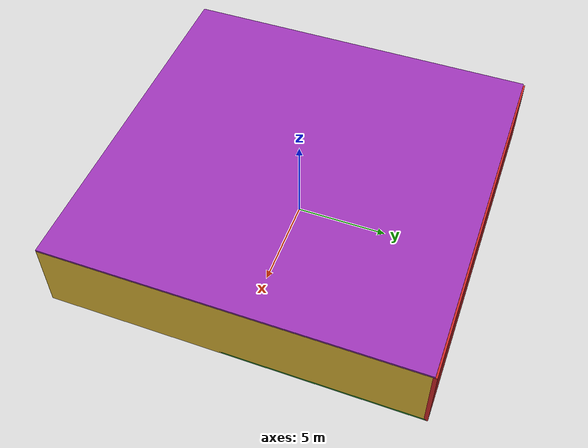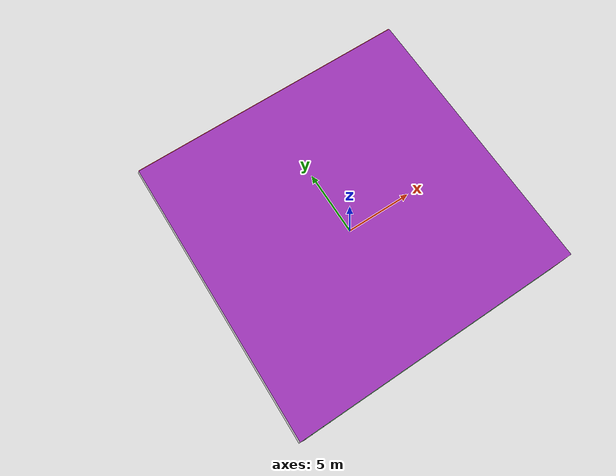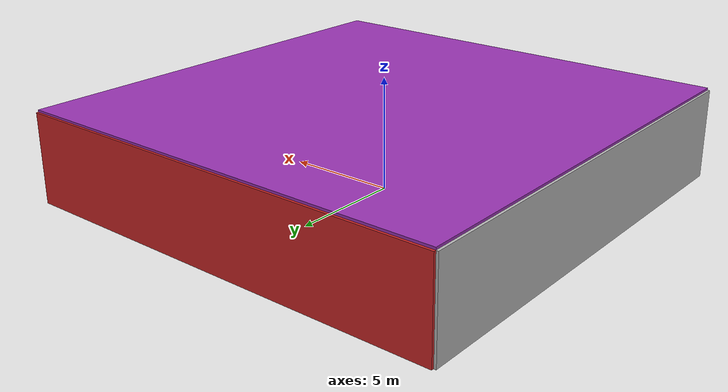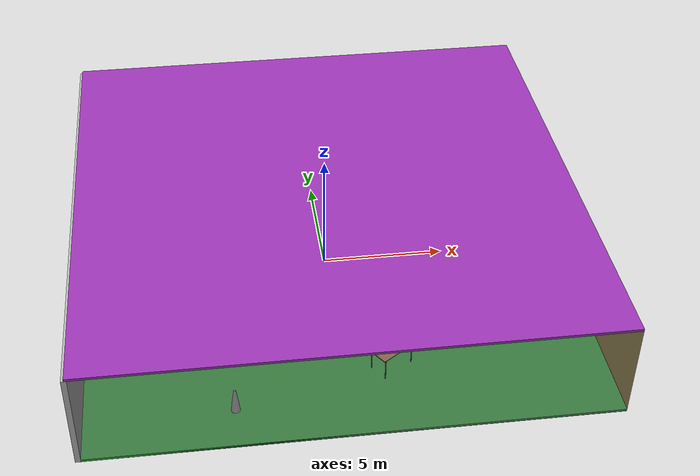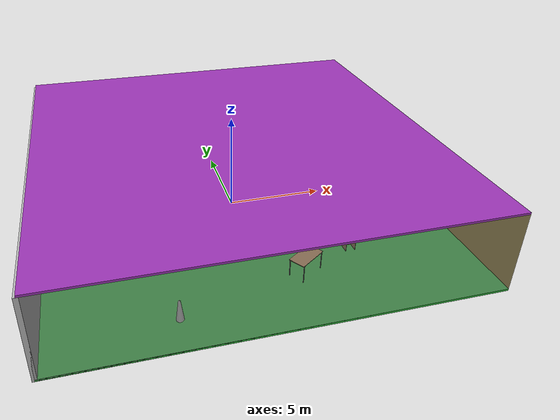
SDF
<sdf version="1.4">
 <world name="default">
  <physics type="ode">
   <max_step_size>0.001</max_step_size>
   <real_time_factor>1</real_time_factor>
   <real_time_update_rate>1000</real_time_update_rate>
   <gravity>0 0 -9.8</gravity>
  </physics>
  <scene><ambient>0.4 0.4 0.4 1</ambient><background>0.7 0.7 0.7 1</background><shadows>1</shadows></scene>
  <model name="Surrounding">
   <static>1</static>
   <link name="Ceiling">
    <collision name="Ceiling_Collision"><geometry><box><size>20 20 0.1</size></box></geometry></collision>
    <visual name="Ceiling_Visual">
     <geometry><box><size>20 20 0.1</size></box></geometry>
     <material>
      <script><uri>file://media/materials/scripts/gazebo.material</uri><name>Gazebo/Purple</name></script>
     </material>
    </visual>
    <pose>0 0 4.05 0 0 0</pose>
   </link>
   <link name="Wall_South">
    <collision name="Wall_South_Collision">
     <geometry><box><size>20 0 4</size></box></geometry>
     <pose>0 0 2 0 -0 0</pose>
    </collision>
    <visual name="Wall_South_Visual">
     <pose>0 0 2 0 -0 0</pose>
     <geometry><box><size>20 0 4</size></box></geometry>
     <material>
      <script><uri>file://media/materials/scripts/gazebo.material</uri><name>Gazebo/GreyTransparent</name></script>
     </material>
    </visual>
    <velocity_decay><linear>0</linear><angular>0</angular></velocity_decay>
    <pose>0 -10 0 0 -0 0</pose>
   </link>
   <link name="Wall_East">
    <collision name="Wall_21_Collision">
     <geometry><box><size>20 0 4</size></box></geometry>
     <pose>0 0 2 0 -0 0</pose>
    </collision>
    <visual name="Wall_21_Visual">
     <pose>0 0 2 0 -0 0</pose>
     <geometry><box><size>20 0 4</size></box></geometry>
     <material>
      <script><uri>file://media/materials/scripts/gazebo.material</uri><name>Gazebo/Gold</name></script>
     </material>
    </visual>
    <velocity_decay><linear>0</linear><angular>0</angular></velocity_decay>
    <pose>10 0 0 0 -0 1.5708</pose>
   </link>
   <link name="Wall_North">
    <collision name="Wall_22_Collision">
     <geometry><box><size>20 0.2 4</size></box></geometry>
     <pose>0 0 2 0 -0 0</pose>
    </collision>
    <visual name="Wall_22_Visual">
     <pose>0 0 2 0 -0 0</pose>
     <geometry><box><size>20 0.2 4</size></box></geometry>
     <material>
      <script><uri>file://media/materials/scripts/gazebo.material</uri><name>Gazebo/RedBright</name></script>
     </material>
    </visual>
    <velocity_decay><linear>0</linear><angular>0</angular></velocity_decay>
    <pose>0 10 0 0 -0 0</pose>
   </link>
   <link name="Wall_West">
    <collision name="Wall_23_Collision">
     <geometry><box><size>20 0.2 4</size></box></geometry>
     <pose>0 0 2 0 -0 0</pose>
    </collision>
    <visual name="Wall_23_Visual">
     <pose>0 0 2 0 -0 0</pose>
     <geometry><box><size>20 0.2 4</size></box></geometry>
     <material>
      <script><uri>file://media/materials/scripts/gazebo.material</uri><name>Gazebo/CloudySky</name></script>
     </material>
    </visual>
    <velocity_decay><linear>0</linear><angular>0</angular></velocity_decay>
    <pose>-10 0 0 0 0 -1.5708</pose>
   </link>
   <link name="Ground_link">
    <collision name="collision">
     <pose>0 0 .05 0 -0 0</pose>
     <geometry><box><size>20 20 0.1</size></box></geometry>
    </collision>
    <visual name="visual">
     <pose>0 0 .05 0 -0 0</pose>
     <geometry><box><size>20 20 0.1</size></box></geometry>
     <material>
      <script><uri>file://media/materials/scripts/gazebo.material</uri><name>Gazebo/Green</name></script>
     </material>
    </visual>
   </link>
   <static>1</static>
  </model>
  <spherical_coordinates>
   <surface_model>EARTH_WGS84</surface_model>
   <latitude_deg>0</latitude_deg>
   <longitude_deg>0</longitude_deg>
   <elevation>0</elevation>
   <heading_deg>0</heading_deg>
  </spherical_coordinates>
  <light name="lightball_0" type="diffuse">
   <diffuse>0.8 0.8 0.8 1</diffuse>
   <specular>0.2 0.2 0.2 1</specular>
   <attenuation>
    <range>100</range>
    <constant>0.7</constant>
    <linear>0.01</linear>
    <quadratic>0.001</quadratic>
   </attenuation>
   <direction>-0.5 0.1 -0.9</direction>
   <pose>6.91391337421 1.9397386067 1.12488992181 0 0 0</pose>
  </light>
  <light name="lightball_1" type="diffuse">
   <diffuse>0.8 0.8 0.8 1</diffuse>
   <specular>0.2 0.2 0.2 1</specular>
   <attenuation>
    <range>100</range>
    <constant>0.7</constant>
    <linear>0.01</linear>
    <quadratic>0.001</quadratic>
   </attenuation>
   <direction>-0.5 0.1 -0.9</direction>
   <pose>-5.84541247762 -9.19596233249 2.07328607631 0 0 0</pose>
  </light>
  <light name="lightball_2" type="diffuse">
   <diffuse>0.8 0.8 0.8 1</diffuse>
   <specular>0.2 0.2 0.2 1</specular>
   <attenuation>
    <range>100</range>
    <constant>0.7</constant>
    <linear>0.01</linear>
    <quadratic>0.001</quadratic>
   </attenuation>
   <direction>-0.5 0.1 -0.9</direction>
   <pose>9.56843630041 -9.8656228604 2.65243834835 0 0 0</pose>
  </light>
  <include>
   <uri>model://construction_cone</uri>
   <pose>-7.04602468943 8.5009863677 0 0 0 2.32283035949</pose>
  </include>
  <include>
   <uri>model://construction_cone</uri>
   <pose>-4.309839875 -8.26906326877 0 0 0 1.56051943425</pose>
  </include>
  <include><uri>model://cabinet</uri><pose>-4.86173701633 -4.53871390299 0 0 0 2.32190610909</pose></include>
  <include><uri>model://table</uri><pose>1.7592755431 -6.64352513174 0 0 0 0.599681172764</pose></include>
  <include><uri>model://cabinet</uri><pose>2.26982145807 1.46886898444 0 0 0 1.29419224212</pose></include>
  <include>
   <uri>model://textured_shapes</uri>
   <pose>0.809553819113 6.36154779958 0 0 0 1.18107365504</pose>
  </include>
  <include><uri>model://cabinet</uri><pose>4.43357665097 -5.47966804569 0 0 0 1.58182650395</pose></include>
 </world>
</sdf>

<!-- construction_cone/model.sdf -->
<sdf version="1.5">
  <model name="Construction Cone">
    <link name="link">
      <collision name="collision">
        <geometry>
          <mesh>
            <scale>10 10 10</scale>
            <uri>file://isr-testbed/construction_cone/meshes/construction_cone.dae</uri>
          </mesh>
        </geometry>
      </collision>
      <visual name="visual">
        <geometry>
          <mesh>
            <scale>10 10 10</scale>
            <uri>file://isr-testbed/construction_cone/meshes/construction_cone.dae</uri>
          </mesh>
        </geometry>
      </visual>
    </link>
  </model>
</sdf>

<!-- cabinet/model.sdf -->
<sdf version="1.5">
  <model name="cabinet">
    <static>true</static>
    <link name="cabinet_bottom_plate">
      <inertial>
        <pose>0 0 -1 0 0 0</pose>
        <inertia>
          <ixx>2.050000</ixx>
          <ixy>0</ixy>
          <ixz>0</ixz>
          <iyy>2.050000</iyy>
          <iyz>0</iyz>
          <izz>2.050000</izz>
        </inertia>
        <mass>25.000000</mass>
      </inertial>
      <collision name="cabinet_bottom_plate_geom">
        <pose>0 0 0.010000 0 0 0</pose>
        <geometry>
          <box>
            <size>0.450000 0.450000 0.020000</size>
          </box>
        </geometry>
      </collision>
      <visual name="cabinet_bottom_plate_geom_visual">
        <pose>0 0 0.010000 0 0 0</pose>
        <geometry>
          <box>
            <size>0.450000 0.450000 0.020000</size>
          </box>
        </geometry>
        <material>
          <script>
            <uri>model://media/materials/scripts/gazebo.material</uri>
            <name>Gazebo/Wood</name>
          </script>
        </material>
      </visual>
      <collision name="cabinet_bottom_plate_geom_cabinet_back_plate">
        <pose>0.235000 0 0.510000 0 0 0</pose>
        <geometry>
          <box>
            <size>0.020000 0.450000 1.020000</size>
          </box>
        </geometry>
      </collision>
      <visual name="cabinet_bottom_plate_geom_cabinet_back_plate_visual">
        <pose>0.235000 0 0.510000 0 0 0</pose>
        <geometry>
          <box>
            <size>0.020000 0.450000 1.020000</size>
          </box>
        </geometry>
        <material>
          <script>
            <uri>model://media/materials/scripts/gazebo.material</uri>
            <name>Gazebo/Wood</name>
          </script>
        </material>
      </visual>
      <collision name="cabinet_bottom_plate_geom_cabinet_left_plate">
        <pose>0 0.235000 0.510000 0 0 0</pose>
        <geometry>
          <box>
            <size>0.450000 0.020000 1.020000</size>
          </box>
        </geometry>
      </collision>
      <visual name="cabinet_bottom_plate_geom_cabinet_left_plate_visual">
        <pose>0 0.235000 0.510000 0 0 0</pose>
        <geometry>
          <box>
            <size>0.450000 0.020000 1.020000</size>
          </box>
        </geometry>
        <material>
          <script>
            <uri>model://media/materials/scripts/gazebo.material</uri>
            <name>Gazebo/Wood</name>
          </script>
        </material>
      </visual>
      <collision name="cabinet_bottom_plate_geom_cabinet_middle_plate">
        <pose>0 0 0.510000 0 0 0</pose>
        <geometry>
          <box>
            <size>0.450000 0.450000 0.020000</size>
          </box>
        </geometry>
      </collision>
      <visual name="cabinet_bottom_plate_geom_cabinet_middle_plate_visual">
        <pose>0 0 0.510000 0 0 0</pose>
        <geometry>
          <box>
            <size>0.450000 0.450000 0.020000</size>
          </box>
        </geometry>
        <material>
          <script>
            <uri>model://media/materials/scripts/gazebo.material</uri>
            <name>Gazebo/Wood</name>
          </script>
        </material>
      </visual>
      <collision name="cabinet_bottom_plate_geom_cabinet_right_plate">
        <pose>0 -0.235000 0.510000 0 0 0</pose>
        <geometry>
          <box>
            <size>0.450000 0.020000 1.020000</size>
          </box>
        </geometry>
      </collision>
      <visual name="cabinet_bottom_plate_geom_cabinet_right_plate_visual">
        <pose>0 -0.235000 0.510000 0 0 0</pose>
        <geometry>
          <box>
            <size>0.450000 0.020000 1.020000</size>
          </box>
        </geometry>
        <material>
          <script>
            <uri>model://media/materials/scripts/gazebo.material</uri>
            <name>Gazebo/Wood</name>
          </script>
        </material>
      </visual>
      <collision name="cabinet_bottom_plate_geom_cabinet_top_plate">
        <pose>0 0 1.010000 0 0 0</pose>
        <geometry>
          <box>
            <size>0.450000 0.450000 0.020000</size>
          </box>
        </geometry>
      </collision>
      <visual name="cabinet_bottom_plate_geom_cabinet_top_plate_visual">
        <pose>0 0 1.010000 0 0 0</pose>
        <geometry>
          <box>
            <size>0.450000 0.450000 0.020000</size>
          </box>
        </geometry>
        <material>
          <script>
            <uri>model://media/materials/scripts/gazebo.material</uri>
            <name>Gazebo/Wood</name>
          </script>
        </material>
      </visual>
    </link>
  </model>
</sdf>

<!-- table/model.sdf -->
<sdf version="1.5">
  <model name="table">
    <static>true</static>
    <link name="link">
      <collision name="surface">
        <pose>0 0 1.0 0 0 0</pose>
        <geometry>
          <box>
            <size>1.5 0.8 0.03</size>
          </box>
        </geometry>
        <surface>
          <friction>
            <ode>
              <mu>0.6</mu>
              <mu2>0.6</mu2>
            </ode>
          </friction>
        </surface>
      </collision>
      <visual name="visual1">
        <pose>0 0 1.0 0 0 0</pose>
        <geometry>
          <box>
            <size>1.5 0.8 0.03</size>
          </box>
        </geometry>
        <material>
          <script>
            <uri>model://media/materials/scripts/gazebo.material</uri>
            <name>Gazebo/Wood</name>
          </script>
        </material>
      </visual>
      <collision name="front_left_leg">
        <pose>0.68 0.38 0.5 0 0 0</pose>
        <geometry>
          <cylinder>
            <radius>0.02</radius>
            <length>1.0</length>
          </cylinder>
        </geometry>
      </collision>
      <visual name="front_left_leg">
        <pose>0.68 0.38 0.5 0 0 0</pose>
        <geometry>
          <cylinder>
            <radius>0.02</radius>
            <length>1.0</length>
          </cylinder>
        </geometry>
        <material>
          <script>
            <uri>model://media/materials/scripts/gazebo.material</uri>
            <name>Gazebo/Grey</name>
          </script>
        </material>
      </visual>
      <collision name="front_right_leg">
        <pose>0.68 -0.38 0.5 0 0 0</pose>
        <geometry>
          <cylinder>
            <radius>0.02</radius>
            <length>1.0</length>
          </cylinder>
        </geometry>
      </collision>
      <visual name="front_right_leg">
        <pose>0.68 -0.38 0.5 0 0 0</pose>
        <geometry>
          <cylinder>
            <radius>0.02</radius>
            <length>1.0</length>
          </cylinder>
        </geometry>
        <material>
          <script>
            <uri>model://media/materials/scripts/gazebo.material</uri>
            <name>Gazebo/Grey</name>
          </script>
        </material>
      </visual>
      <collision name="back_right_leg">
        <pose>-0.68 -0.38 0.5 0 0 0</pose>
        <geometry>
          <cylinder>
            <radius>0.02</radius>
            <length>1.0</length>
          </cylinder>
        </geometry>
      </collision>
      <visual name="back_right_leg">
        <pose>-0.68 -0.38 0.5 0 0 0</pose>
        <geometry>
          <cylinder>
            <radius>0.02</radius>
            <length>1.0</length>
          </cylinder>
        </geometry>
        <material>
          <script>
            <uri>model://media/materials/scripts/gazebo.material</uri>
            <name>Gazebo/Grey</name>
          </script>
        </material>
      </visual>
      <collision name="back_left_leg">
        <pose>-0.68 0.38 0.5 0 0 0</pose>
        <geometry>
          <cylinder>
            <radius>0.02</radius>
            <length>1.0</length>
          </cylinder>
        </geometry>
      </collision>
      <visual name="back_left_leg">
        <pose>-0.68 0.38 0.5 0 0 0</pose>
        <geometry>
          <cylinder>
            <radius>0.02</radius>
            <length>1.0</length>
          </cylinder>
        </geometry>
        <material>
          <script>
            <uri>model://media/materials/scripts/gazebo.material</uri>
            <name>Gazebo/Grey</name>
          </script>
        </material>
      </visual>
    </link>
  </model>
</sdf>

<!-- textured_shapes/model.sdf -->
<sdf version="1.6">
  <model name="textured_shapes">
    <pose>0 0 0.5 0 0 0</pose>
    <link name="box">
      <pose>0 -1.5 0 0 0 0</pose>
      <collision name="collision">
        <geometry>
          <box>
            <size>1 1 1</size>
          </box>
        </geometry>
      </collision>
      <visual name="visual">
        <geometry>
          <box>
            <size>1 1 1</size>
          </box>
        </geometry>
        <material>
          <script>
            <uri>model://../model_source/models/textured_shapes/materials/scripts</uri>
            <uri>model://../model_source/models/textured_shapes/materials/textures</uri>
            <name>TexturedShape/Squares</name>
          </script>
        </material>
      </visual>
    </link>
    <link name="sphere">
      <collision name="collision">
        <geometry>
          <sphere>
            <radius>0.5</radius>
          </sphere>
        </geometry>
      </collision>
      <visual name="visual">
        <geometry>
          <sphere>
            <radius>0.5</radius>
          </sphere>
        </geometry>
        <material>
          <script>
            <uri>model://../model_source/models/textured_shapes/materials/scripts</uri>
            <uri>model://../model_source/models/textured_shapes/materials/textures</uri>
            <name>TexturedShape/Squares</name>
          </script>
        </material>
      </visual>
    </link>
    <link name="cylinder">
      <pose>0 1.5 0 0 0 0</pose>
      <collision name="collision">
        <geometry>
          <cylinder>
            <radius>0.5</radius>
            <length>1</length>
          </cylinder>
        </geometry>
      </collision>
      <visual name="visual">
        <geometry>
          <cylinder>
            <radius>0.5</radius>
            <length>1</length>
          </cylinder>
        </geometry>
        <material>
          <script>
            <uri>model://../model_source/models/textured_shapes/materials/scripts</uri>
            <uri>model://../model_source/models/textured_shapes/materials/textures</uri>
            <name>TexturedShape/Squares</name>
          </script>
        </material>
      </visual>
    </link>
  </model>
</sdf>
